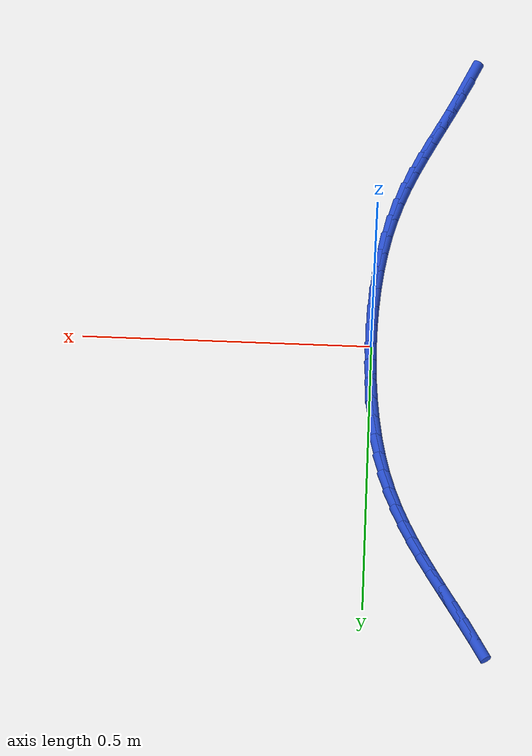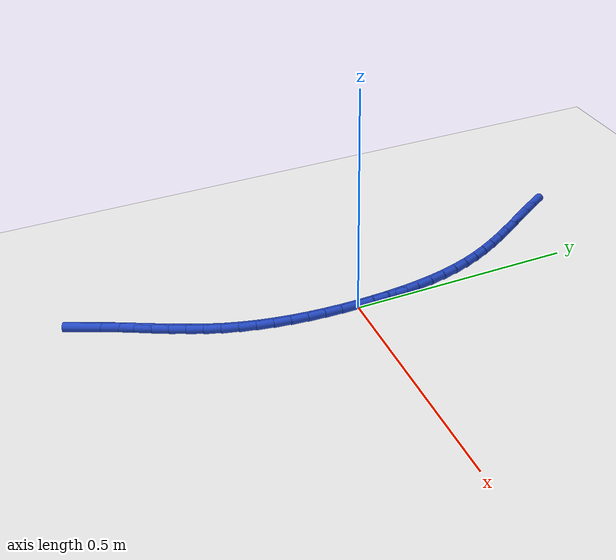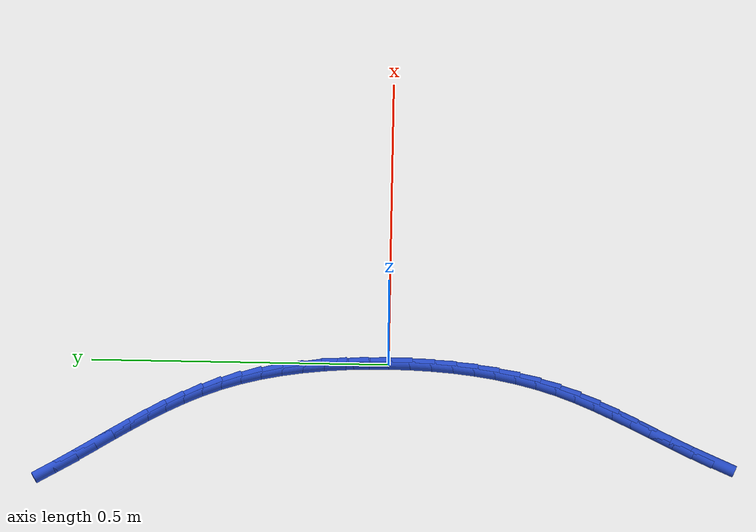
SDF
<sdf version="1.6">
 <world name="default">
  <model name="ground_plane">
   <static>1</static>
   <link name="link">
    <collision name="collision">
     <geometry><plane><normal>0 0 1</normal><size>100 100</size></plane></geometry>
     <surface><friction><ode><mu>100</mu><mu2>50</mu2></ode></friction></surface>
    </collision>
    <visual name="visual">
     <cast_shadows>0</cast_shadows>
     <geometry><plane><normal>0 0 1</normal><size>100 100</size></plane></geometry>
     <material>
      <script><uri>file://media/materials/scripts/gazebo.material</uri><name>Gazebo/WhiteGlow</name></script>
     </material>
    </visual>
   </link>
  </model>
  <model name="line">
   <link name="link_0">
    <pose>3.469446951953614e-18 2.7755575615628914e-17 0.01 0 1.57 -1.556938290337987</pose>
    <collision name="collision">
     <geometry><cylinder><radius>0.01</radius><length>0.08</length></cylinder></geometry>
    </collision>
    <visual name="visual">
     <material>
      <script><name>Gazebo/Blue</name><uri>file://media/materials/scripts/gazebo.material</uri></script>
     </material>
     <geometry><cylinder><radius>0.01</radius><length>0.08</length></cylinder></geometry>
    </visual>
   </link>
   <link name="link_1">
    <pose>-0.0005086264192575455 0.03670028294934127 0.01 0 1.57 -1.526737304560786</pose>
    <collision name="collision">
     <geometry><cylinder><radius>0.01</radius><length>0.08</length></cylinder></geometry>
    </collision>
    <visual name="visual">
     <material>
      <script><name>Gazebo/Blue</name><uri>file://media/materials/scripts/gazebo.material</uri></script>
     </material>
     <geometry><cylinder><radius>0.01</radius><length>0.08</length></cylinder></geometry>
    </visual>
   </link>
   <link name="link_2">
    <pose>-0.0021235837073618974 0.0733309680475676 0.01 0 1.57 -1.4933308353421797</pose>
    <collision name="collision">
     <geometry><cylinder><radius>0.01</radius><length>0.08</length></cylinder></geometry>
    </collision>
    <visual name="visual">
     <material>
      <script><name>Gazebo/Blue</name><uri>file://media/materials/scripts/gazebo.material</uri></script>
     </material>
     <geometry><cylinder><radius>0.01</radius><length>0.08</length></cylinder></geometry>
    </visual>
   </link>
   <link name="link_3">
    <pose>-0.004949260395487355 0.10973456104645152 0.01 0 1.57 -1.456337692629741</pose>
    <collision name="collision">
     <geometry><cylinder><radius>0.01</radius><length>0.08</length></cylinder></geometry>
    </collision>
    <visual name="visual">
     <material>
      <script><name>Gazebo/Blue</name><uri>file://media/materials/scripts/gazebo.material</uri></script>
     </material>
     <geometry><cylinder><radius>0.01</radius><length>0.08</length></cylinder></geometry>
    </visual>
   </link>
   <link name="link_4">
    <pose>-0.009090045014808219 0.14575356769776568 0.01 0 1.57 -1.4153315411979794</pose>
    <collision name="collision">
     <geometry><cylinder><radius>0.01</radius><length>0.08</length></cylinder></geometry>
    </collision>
    <visual name="visual">
     <material>
      <script><name>Gazebo/Blue</name><uri>file://media/materials/scripts/gazebo.material</uri></script>
     </material>
     <geometry><cylinder><radius>0.01</radius><length>0.08</length></cylinder></geometry>
    </visual>
   </link>
   <link name="link_5">
    <pose>-0.014650326096498783 0.1812304937532826 0.01 0 1.57 -1.3698450771951134</pose>
    <collision name="collision">
     <geometry><cylinder><radius>0.01</radius><length>0.08</length></cylinder></geometry>
    </collision>
    <visual name="visual">
     <material>
      <script><name>Gazebo/Blue</name><uri>file://media/materials/scripts/gazebo.material</uri></script>
     </material>
     <geometry><cylinder><radius>0.01</radius><length>0.08</length></cylinder></geometry>
    </visual>
   </link>
   <link name="link_6">
    <pose>-0.021734492171733347 0.2160078449647749 0.01 0 1.57 -1.319380649504235</pose>
    <collision name="collision">
     <geometry><cylinder><radius>0.01</radius><length>0.08</length></cylinder></geometry>
    </collision>
    <visual name="visual">
     <material>
      <script><name>Gazebo/Blue</name><uri>file://media/materials/scripts/gazebo.material</uri></script>
     </material>
     <geometry><cylinder><radius>0.01</radius><length>0.08</length></cylinder></geometry>
    </visual>
   </link>
   <link name="link_7">
    <pose>-0.030446931771686215 0.24992812708401513 0.01 0 1.57 -1.263430914252035</pose>
    <collision name="collision">
     <geometry><cylinder><radius>0.01</radius><length>0.08</length></cylinder></geometry>
    </collision>
    <visual name="visual">
     <material>
      <script><name>Gazebo/Blue</name><uri>file://media/materials/scripts/gazebo.material</uri></script>
     </material>
     <geometry><cylinder><radius>0.01</radius><length>0.08</length></cylinder></geometry>
    </visual>
   </link>
   <link name="link_8">
    <pose>-0.040892031189807485 0.28283384830303826 0.01 0 1.57 -1.2039577810393982</pose>
    <collision name="collision">
     <geometry><cylinder><radius>0.01</radius><length>0.08</length></cylinder></geometry>
    </collision>
    <visual name="visual">
     <material>
      <script><name>Gazebo/Blue</name><uri>file://media/materials/scripts/gazebo.material</uri></script>
     </material>
     <geometry><cylinder><radius>0.01</radius><length>0.08</length></cylinder></geometry>
    </visual>
   </link>
   <link name="link_9">
    <pose>-0.053111385856684235 0.3146359909267199 0.01 0 1.57 -1.1500253934060036</pose>
    <collision name="collision">
     <geometry><cylinder><radius>0.01</radius><length>0.08</length></cylinder></geometry>
    </collision>
    <visual name="visual">
     <material>
      <script><name>Gazebo/Blue</name><uri>file://media/materials/scripts/gazebo.material</uri></script>
     </material>
     <geometry><cylinder><radius>0.01</radius><length>0.08</length></cylinder></geometry>
    </visual>
   </link>
   <link name="link_10">
    <pose>-0.06691977106962267 0.3454928870604103 0.01 0 1.57 -1.1045474351079927</pose>
    <collision name="collision">
     <geometry><cylinder><radius>0.01</radius><length>0.08</length></cylinder></geometry>
    </collision>
    <visual name="visual">
     <material>
      <script><name>Gazebo/Blue</name><uri>file://media/materials/scripts/gazebo.material</uri></script>
     </material>
     <geometry><cylinder><radius>0.01</radius><length>0.08</length></cylinder></geometry>
    </visual>
   </link>
   <link name="link_11">
    <pose>-0.08208076334813738 0.37561870162856725 0.01 0 1.57 -1.068153264390269</pose>
    <collision name="collision">
     <geometry><cylinder><radius>0.01</radius><length>0.08</length></cylinder></geometry>
    </collision>
    <visual name="visual">
     <material>
      <script><name>Gazebo/Blue</name><uri>file://media/materials/scripts/gazebo.material</uri></script>
     </material>
     <geometry><cylinder><radius>0.01</radius><length>0.08</length></cylinder></geometry>
    </visual>
   </link>
   <link name="link_12">
    <pose>-0.0983579392117429 0.4052275995556483 0.01 0 1.57 -1.0411528851741463</pose>
    <collision name="collision">
     <geometry><cylinder><radius>0.01</radius><length>0.08</length></cylinder></geometry>
    </collision>
    <visual name="visual">
     <material>
      <script><name>Gazebo/Blue</name><uri>file://media/materials/scripts/gazebo.material</uri></script>
     </material>
     <geometry><cylinder><radius>0.01</radius><length>0.08</length></cylinder></geometry>
    </visual>
   </link>
   <link name="link_13">
    <pose>-0.1155148751799537 0.43453374576611087 0.01 0 1.57 -1.0236162193588425</pose>
    <collision name="collision">
     <geometry><cylinder><radius>0.01</radius><length>0.08</length></cylinder></geometry>
    </collision>
    <visual name="visual">
     <material>
      <script><name>Gazebo/Blue</name><uri>file://media/materials/scripts/gazebo.material</uri></script>
     </material>
     <geometry><cylinder><radius>0.01</radius><length>0.08</length></cylinder></geometry>
    </visual>
   </link>
   <link name="link_14">
    <pose>-0.13331514777228431 0.4637513051844127 0.01 0 1.57 -1.0154451998023997</pose>
    <collision name="collision">
     <geometry><cylinder><radius>0.01</radius><length>0.08</length></cylinder></geometry>
    </collision>
    <visual name="visual">
     <material>
      <script><name>Gazebo/Blue</name><uri>file://media/materials/scripts/gazebo.material</uri></script>
     </material>
     <geometry><cylinder><radius>0.01</radius><length>0.08</length></cylinder></geometry>
    </visual>
   </link>
   <link name="link_15">
    <pose>-0.15152233350824934 0.4930944427350114 0.01 0 1.57 -1.0164265105368409</pose>
    <collision name="collision">
     <geometry><cylinder><radius>0.01</radius><length>0.08</length></cylinder></geometry>
    </collision>
    <visual name="visual">
     <material>
      <script><name>Gazebo/Blue</name><uri>file://media/materials/scripts/gazebo.material</uri></script>
     </material>
     <geometry><cylinder><radius>0.01</radius><length>0.08</length></cylinder></geometry>
    </visual>
   </link>
   <link name="link_16">
    <pose>-0.16990000890736318 0.5227773233423645 0.01 0 1.57 -1.0262610649358161</pose>
    <collision name="collision">
     <geometry><cylinder><radius>0.01</radius><length>0.08</length></cylinder></geometry>
    </collision>
    <visual name="visual">
     <material>
      <script><name>Gazebo/Blue</name><uri>file://media/materials/scripts/gazebo.material</uri></script>
     </material>
     <geometry><cylinder><radius>0.01</radius><length>0.08</length></cylinder></geometry>
    </visual>
   </link>
   <link name="link_17">
    <pose>-0.18821175048914052 0.5530141119309296 0.01 0 1.57 -1.0445716546282744</pose>
    <collision name="collision">
     <geometry><cylinder><radius>0.01</radius><length>0.08</length></cylinder></geometry>
    </collision>
    <visual name="visual">
     <material>
      <script><name>Gazebo/Blue</name><uri>file://media/materials/scripts/gazebo.material</uri></script>
     </material>
     <geometry><cylinder><radius>0.01</radius><length>0.08</length></cylinder></geometry>
    </visual>
   </link>
   <link name="link_204">
    <pose>-0.15975118438366676 -0.5429968186037988 0.01 0 1.57 1.152723452491724</pose>
    <collision name="collision">
     <geometry><cylinder><radius>0.01</radius><length>0.08</length></cylinder></geometry>
    </collision>
    <visual name="visual">
     <material>
      <script><name>Gazebo/Blue</name><uri>file://media/materials/scripts/gazebo.material</uri></script>
     </material>
     <geometry><cylinder><radius>0.01</radius><length>0.08</length></cylinder></geometry>
    </visual>
   </link>
   <link name="link_205">
    <pose>-0.1446018579043687 -0.5088969192080757 0.01 0 1.57 1.127055078733604</pose>
    <collision name="collision">
     <geometry><cylinder><radius>0.01</radius><length>0.08</length></cylinder></geometry>
    </collision>
    <visual name="visual">
     <material>
      <script><name>Gazebo/Blue</name><uri>file://media/materials/scripts/gazebo.material</uri></script>
     </material>
     <geometry><cylinder><radius>0.01</radius><length>0.08</length></cylinder></geometry>
    </visual>
   </link>
   <link name="link_206">
    <pose>-0.12884642084204947 -0.4757526316026128 0.01 0 1.57 1.11217633288944</pose>
    <collision name="collision">
     <geometry><cylinder><radius>0.01</radius><length>0.08</length></cylinder></geometry>
    </collision>
    <visual name="visual">
     <material>
      <script><name>Gazebo/Blue</name><uri>file://media/materials/scripts/gazebo.material</uri></script>
     </material>
     <geometry><cylinder><radius>0.01</radius><length>0.08</length></cylinder></geometry>
    </visual>
   </link>
   <link name="link_207">
    <pose>-0.11282959018508909 -0.4433122448458599 0.01 0 1.57 1.1086663475039076</pose>
    <collision name="collision">
     <geometry><cylinder><radius>0.01</radius><length>0.08</length></cylinder></geometry>
    </collision>
    <visual name="visual">
     <material>
      <script><name>Gazebo/Blue</name><uri>file://media/materials/scripts/gazebo.material</uri></script>
     </material>
     <geometry><cylinder><radius>0.01</radius><length>0.08</length></cylinder></geometry>
    </visual>
   </link>
   <link name="link_208">
    <pose>-0.09689611344640296 -0.41132401758960546 0.01 0 1.57 1.1169745109072176</pose>
    <collision name="collision">
     <geometry><cylinder><radius>0.01</radius><length>0.08</length></cylinder></geometry>
    </collision>
    <visual name="visual">
     <material>
      <script><name>Gazebo/Blue</name><uri>file://media/materials/scripts/gazebo.material</uri></script>
     </material>
     <geometry><cylinder><radius>0.01</radius><length>0.08</length></cylinder></geometry>
    </visual>
   </link>
   <link name="link_209">
    <pose>-0.08139073813890525 -0.3795362084856351 0.01 0 1.57 1.1374169306726336</pose>
    <collision name="collision">
     <geometry><cylinder><radius>0.01</radius><length>0.08</length></cylinder></geometry>
    </collision>
    <visual name="visual">
     <material>
      <script><name>Gazebo/Blue</name><uri>file://media/materials/scripts/gazebo.material</uri></script>
     </material>
     <geometry><cylinder><radius>0.01</radius><length>0.08</length></cylinder></geometry>
    </visual>
   </link>
   <link name="link_210">
    <pose>-0.0666582117755105 -0.3476970761857353 0.01 0 1.57 1.1701254019919207</pose>
    <collision name="collision">
     <geometry><cylinder><radius>0.01</radius><length>0.08</length></cylinder></geometry>
    </collision>
    <visual name="visual">
     <material>
      <script><name>Gazebo/Blue</name><uri>file://media/materials/scripts/gazebo.material</uri></script>
     </material>
     <geometry><cylinder><radius>0.01</radius><length>0.08</length></cylinder></geometry>
    </visual>
   </link>
   <link name="link_211">
    <pose>-0.053043281869133284 -0.31555487934169285 0.01 0 1.57 1.2149458565251494</pose>
    <collision name="collision">
     <geometry><cylinder><radius>0.01</radius><length>0.08</length></cylinder></geometry>
    </collision>
    <visual name="visual">
     <material>
      <script><name>Gazebo/Blue</name><uri>file://media/materials/scripts/gazebo.material</uri></script>
     </material>
     <geometry><cylinder><radius>0.01</radius><length>0.08</length></cylinder></geometry>
    </visual>
   </link>
   <link name="link_212">
    <pose>-0.040890695932687876 -0.2828578766052934 0.01 0 1.57 1.269030240719551</pose>
    <collision name="collision">
     <geometry><cylinder><radius>0.01</radius><length>0.08</length></cylinder></geometry>
    </collision>
    <visual name="visual">
     <material>
      <script><name>Gazebo/Blue</name><uri>file://media/materials/scripts/gazebo.material</uri></script>
     </material>
     <geometry><cylinder><radius>0.01</radius><length>0.08</length></cylinder></geometry>
    </visual>
   </link>
   <link name="link_213">
    <pose>-0.030478006409645656 -0.2494058588629222 0.01 0 1.57 1.3217411423833207</pose>
    <collision name="collision">
     <geometry><cylinder><radius>0.01</radius><length>0.08</length></cylinder></geometry>
    </collision>
    <visual name="visual">
     <material>
      <script><name>Gazebo/Blue</name><uri>file://media/materials/scripts/gazebo.material</uri></script>
     </material>
     <geometry><cylinder><radius>0.01</radius><length>0.08</length></cylinder></geometry>
    </visual>
   </link>
   <link name="link_214">
    <pose>-0.02178507905515296 -0.21522691441007397 0.01 0 1.57 1.3702875391906661</pose>
    <collision name="collision">
     <geometry><cylinder><radius>0.01</radius><length>0.08</length></cylinder></geometry>
    </collision>
    <visual name="visual">
     <material>
      <script><name>Gazebo/Blue</name><uri>file://media/materials/scripts/gazebo.material</uri></script>
     </material>
     <geometry><cylinder><radius>0.01</radius><length>0.08</length></cylinder></geometry>
    </visual>
   </link>
   <link name="link_215">
    <pose>-0.014709370696399618 -0.18041233136097334 0.01 0 1.57 1.4148002858441633</pose>
    <collision name="collision">
     <geometry><cylinder><radius>0.01</radius><length>0.08</length></cylinder></geometry>
    </collision>
    <visual name="visual">
     <material>
      <script><name>Gazebo/Blue</name><uri>file://media/materials/scripts/gazebo.material</uri></script>
     </material>
     <geometry><cylinder><radius>0.01</radius><length>0.08</length></cylinder></geometry>
    </visual>
   </link>
   <link name="link_216">
    <pose>-0.009148335223707714 -0.14505340008214293 0.01 0 1.57 1.4554580026049686</pose>
    <collision name="collision">
     <geometry><cylinder><radius>0.01</radius><length>0.08</length></cylinder></geometry>
    </collision>
    <visual name="visual">
     <material>
      <script><name>Gazebo/Blue</name><uri>file://media/materials/scripts/gazebo.material</uri></script>
     </material>
     <geometry><cylinder><radius>0.01</radius><length>0.08</length></cylinder></geometry>
    </visual>
   </link>
   <link name="link_217">
    <pose>-0.004999426527399703 -0.10924141094010764 0.01 0 1.57 1.492465547319041</pose>
    <collision name="collision">
     <geometry><cylinder><radius>0.01</radius><length>0.08</length></cylinder></geometry>
    </collision>
    <visual name="visual">
     <material>
      <script><name>Gazebo/Blue</name><uri>file://media/materials/scripts/gazebo.material</uri></script>
     </material>
     <geometry><cylinder><radius>0.01</radius><length>0.08</length></cylinder></geometry>
    </visual>
   </link>
   <link name="link_218">
    <pose>-0.0021600984977976165 -0.07306765430138999 0.01 0 1.57 1.526037440803503</pose>
    <collision name="collision">
     <geometry><cylinder><radius>0.01</radius><length>0.08</length></cylinder></geometry>
    </collision>
    <visual name="visual">
     <material>
      <script><name>Gazebo/Blue</name><uri>file://media/materials/scripts/gazebo.material</uri></script>
     </material>
     <geometry><cylinder><radius>0.01</radius><length>0.08</length></cylinder></geometry>
    </visual>
   </link>
   <link name="link_219">
    <pose>-0.0005278050252236475 -0.03662342053251322 0.01 0 1.57 1.5563856442040134</pose>
    <collision name="collision">
     <geometry><cylinder><radius>0.01</radius><length>0.08</length></cylinder></geometry>
    </collision>
    <visual name="visual">
     <material>
      <script><name>Gazebo/Blue</name><uri>file://media/materials/scripts/gazebo.material</uri></script>
     </material>
     <geometry><cylinder><radius>0.01</radius><length>0.08</length></cylinder></geometry>
    </visual>
   </link>
   <link name="link_220">
    <pose>1.3010426069826053e-17 2.3592239273284576e-16 0.01 0 1.57 -1.557881754615013</pose>
    <collision name="collision">
     <geometry><cylinder><radius>0.01</radius><length>0.08</length></cylinder></geometry>
    </collision>
    <visual name="visual">
     <material>
      <script><name>Gazebo/Blue</name><uri>file://media/materials/scripts/gazebo.material</uri></script>
     </material>
     <geometry><cylinder><radius>0.01</radius><length>0.08</length></cylinder></geometry>
    </visual>
   </link>
   <link name="link_221">
    <pose>-0.00047413731244882497 0.036711316929624385 0.01 0 1.57 -1.5333958709859468</pose>
    <collision name="collision">
     <geometry><cylinder><radius>0.01</radius><length>0.08</length></cylinder></geometry>
    </collision>
    <visual name="visual">
     <material>
      <script><name>Gazebo/Blue</name><uri>file://media/materials/scripts/gazebo.material</uri></script>
     </material>
     <geometry><cylinder><radius>0.01</radius><length>0.08</length></cylinder></geometry>
    </visual>
   </link>
   <link name="link_222">
    <pose>-0.0018476708528923956 0.07341923988983953 0.01 0 1.57 -1.5456356067632553</pose>
    <collision name="collision">
     <geometry><cylinder><radius>0.01</radius><length>0.08</length></cylinder></geometry>
    </collision>
    <visual name="visual">
     <material>
      <script><name>Gazebo/Blue</name><uri>file://media/materials/scripts/gazebo.material</uri></script>
     </material>
     <geometry><cylinder><radius>0.01</radius><length>0.08</length></cylinder></geometry>
    </visual>
   </link>
  </model>
 </world>
</sdf>
